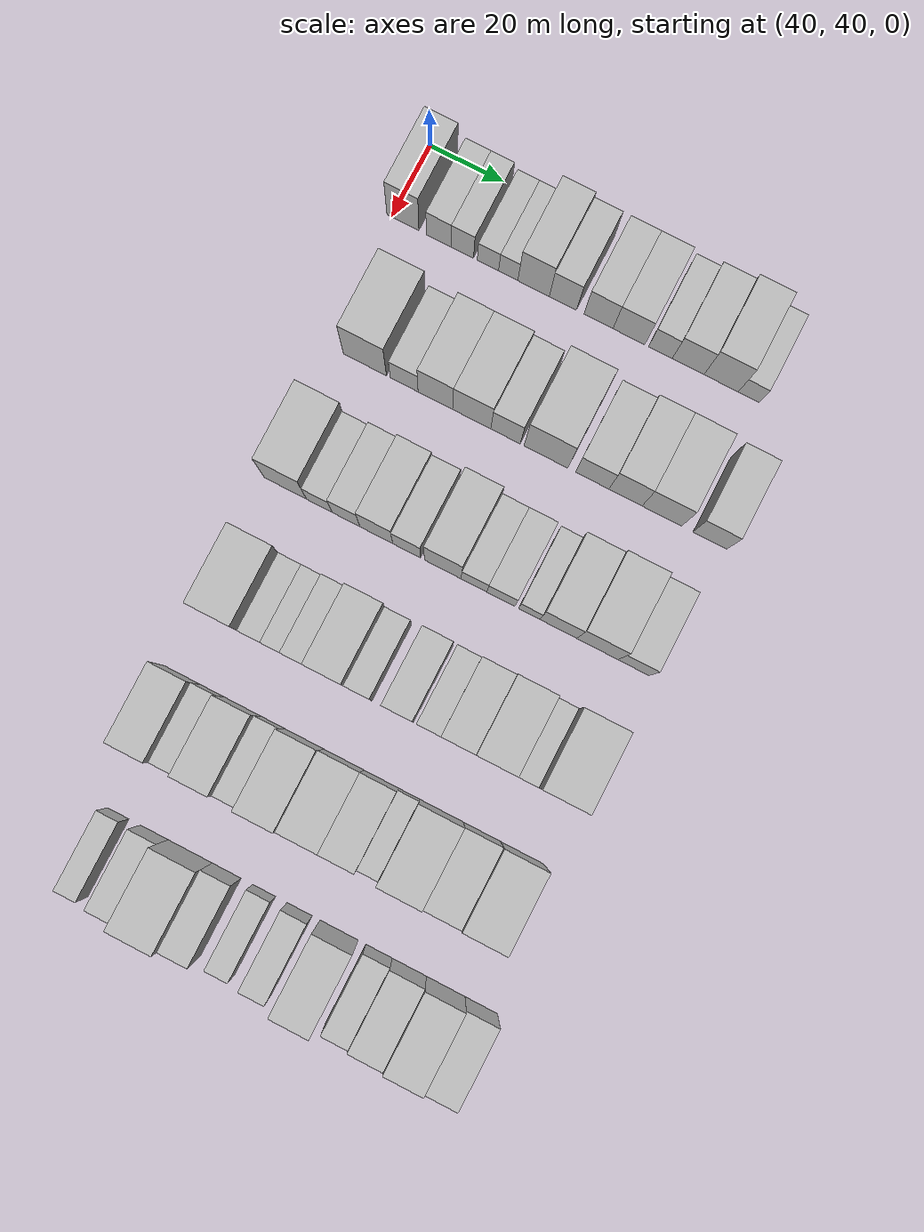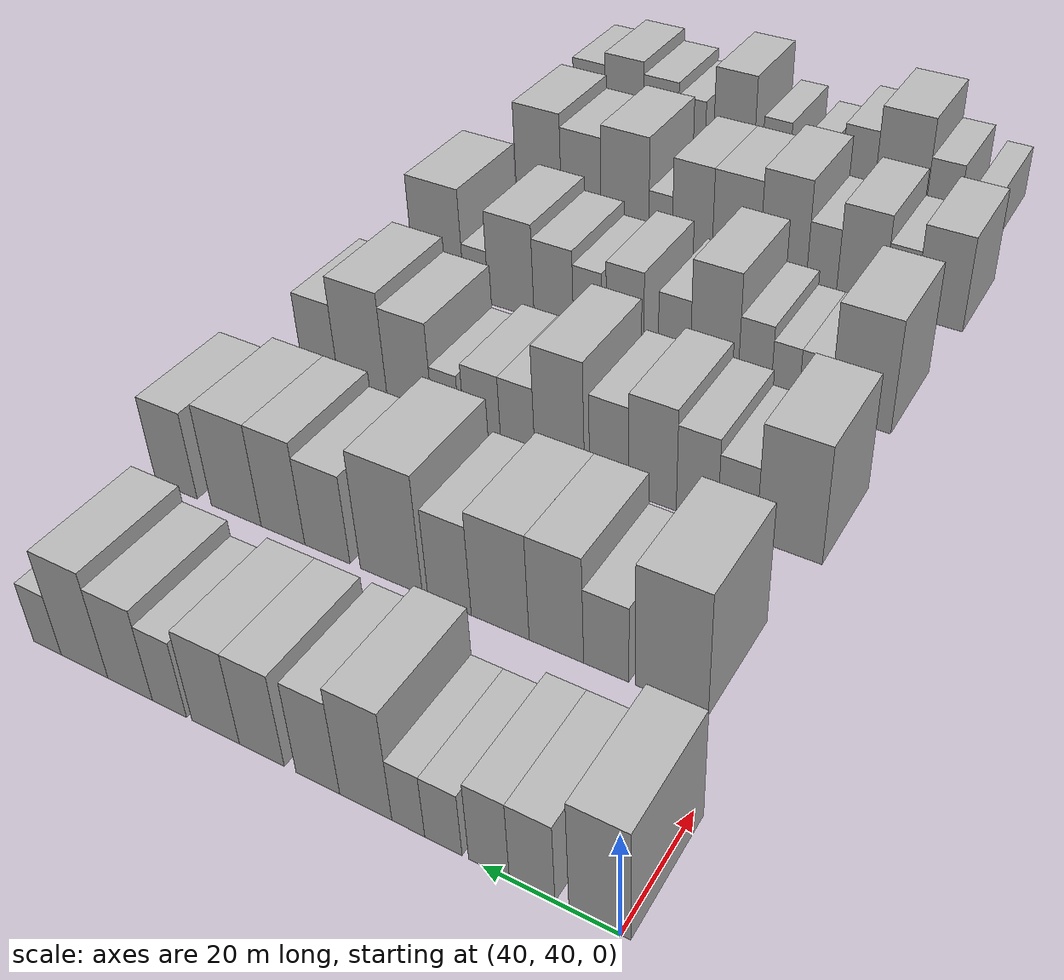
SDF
<sdf version="1.6">
 <world name="default">
  <model name="building_67">
   <static>1</static>
   <pose>50.0000 42.9604 0 0.000000 0.000000 0.000000</pose>
   <link name="link">
    <pose>0 0 10.50 0 0 0</pose>
    <collision name="collision"><geometry><box><size>20.0000 8.6655 21.0000</size></box></geometry></collision>
    <visual name="visual">
     <cast_shadows>0</cast_shadows>
     <geometry><box><size>20.0000 8.6655 21.0000</size></box></geometry>
     <material>
      <script>
       <uri>model://HANNAS_wall/materials/scripts</uri>
       <uri>model://HANNAS_wall/materials/textures</uri>
       <name>vrc/HANNAS_wall</name>
      </script>
     </material>
    </visual>
   </link>
  </model>
  <model name="building_68">
   <static>1</static>
   <pose>50.0000 52.6133 0 0.000000 0.000000 0.000000</pose>
   <link name="link">
    <pose>0 0 7.50 0 0 0</pose>
    <collision name="collision"><geometry><box><size>20.0000 6.6403 15.0000</size></box></geometry></collision>
    <visual name="visual">
     <cast_shadows>0</cast_shadows>
     <geometry><box><size>20.0000 6.6403 15.0000</size></box></geometry>
     <material>
      <script>
       <uri>model://HANNAS_wall/materials/scripts</uri>
       <uri>model://HANNAS_wall/materials/textures</uri>
       <name>vrc/HANNAS_wall</name>
      </script>
     </material>
    </visual>
   </link>
  </model>
  <model name="building_69">
   <static>1</static>
   <pose>50.0000 58.9847 0 0.000000 0.000000 0.000000</pose>
   <link name="link">
    <pose>0 0 7.50 0 0 0</pose>
    <collision name="collision"><geometry><box><size>20.0000 6.1026 15.0000</size></box></geometry></collision>
    <visual name="visual">
     <cast_shadows>0</cast_shadows>
     <geometry><box><size>20.0000 6.1026 15.0000</size></box></geometry>
     <material>
      <script>
       <uri>model://HANNAS_wall/materials/scripts</uri>
       <uri>model://HANNAS_wall/materials/textures</uri>
       <name>vrc/HANNAS_wall</name>
      </script>
     </material>
    </visual>
   </link>
  </model>
  <model name="building_70">
   <static>1</static>
   <pose>50.0000 65.9096 0 0.000000 0.000000 0.000000</pose>
   <link name="link">
    <pose>0 0 6.00 0 0 0</pose>
    <collision name="collision"><geometry><box><size>20.0000 5.7470 12.0000</size></box></geometry></collision>
    <visual name="visual">
     <cast_shadows>0</cast_shadows>
     <geometry><box><size>20.0000 5.7470 12.0000</size></box></geometry>
     <material>
      <script>
       <uri>model://HANNAS_wall/materials/scripts</uri>
       <uri>model://HANNAS_wall/materials/textures</uri>
       <name>vrc/HANNAS_wall</name>
      </script>
     </material>
    </visual>
   </link>
  </model>
  <model name="building_71">
   <static>1</static>
   <pose>50.0000 71.3713 0 0.000000 0.000000 0.000000</pose>
   <link name="link">
    <pose>0 0 6.00 0 0 0</pose>
    <collision name="collision"><geometry><box><size>20.0000 5.1764 12.0000</size></box></geometry></collision>
    <visual name="visual">
     <cast_shadows>0</cast_shadows>
     <geometry><box><size>20.0000 5.1764 12.0000</size></box></geometry>
     <material>
      <script>
       <uri>model://HANNAS_wall/materials/scripts</uri>
       <uri>model://HANNAS_wall/materials/textures</uri>
       <name>vrc/HANNAS_wall</name>
      </script>
     </material>
    </visual>
   </link>
  </model>
  <model name="building_72">
   <static>1</static>
   <pose>50.0000 78.1862 0 0.000000 0.000000 0.000000</pose>
   <link name="link">
    <pose>0 0 10.50 0 0 0</pose>
    <collision name="collision"><geometry><box><size>20.0000 8.4534 21.0000</size></box></geometry></collision>
    <visual name="visual">
     <cast_shadows>0</cast_shadows>
     <geometry><box><size>20.0000 8.4534 21.0000</size></box></geometry>
     <material>
      <script>
       <uri>model://HANNAS_wall/materials/scripts</uri>
       <uri>model://HANNAS_wall/materials/textures</uri>
       <name>vrc/HANNAS_wall</name>
      </script>
     </material>
    </visual>
   </link>
  </model>
  <model name="building_73">
   <static>1</static>
   <pose>50.0000 86.0639 0 0.000000 0.000000 0.000000</pose>
   <link name="link">
    <pose>0 0 9.00 0 0 0</pose>
    <collision name="collision"><geometry><box><size>20.0000 7.3019 18.0000</size></box></geometry></collision>
    <visual name="visual">
     <cast_shadows>0</cast_shadows>
     <geometry><box><size>20.0000 7.3019 18.0000</size></box></geometry>
     <material>
      <script>
       <uri>model://HANNAS_wall/materials/scripts</uri>
       <uri>model://HANNAS_wall/materials/textures</uri>
       <name>vrc/HANNAS_wall</name>
      </script>
     </material>
    </visual>
   </link>
  </model>
  <model name="building_74">
   <static>1</static>
   <pose>50.0000 95.6060 0 0.000000 0.000000 0.000000</pose>
   <link name="link">
    <pose>0 0 9.00 0 0 0</pose>
    <collision name="collision"><geometry><box><size>20.0000 7.7823 18.0000</size></box></geometry></collision>
    <visual name="visual">
     <cast_shadows>0</cast_shadows>
     <geometry><box><size>20.0000 7.7823 18.0000</size></box></geometry>
     <material>
      <script>
       <uri>model://HANNAS_wall/materials/scripts</uri>
       <uri>model://HANNAS_wall/materials/textures</uri>
       <name>vrc/HANNAS_wall</name>
      </script>
     </material>
    </visual>
   </link>
  </model>
  <model name="building_75">
   <static>1</static>
   <pose>50.0000 103.7394 0 0.000000 0.000000 0.000000</pose>
   <link name="link">
    <pose>0 0 9.00 0 0 0</pose>
    <collision name="collision"><geometry><box><size>20.0000 8.4844 18.0000</size></box></geometry></collision>
    <visual name="visual">
     <cast_shadows>0</cast_shadows>
     <geometry><box><size>20.0000 8.4844 18.0000</size></box></geometry>
     <material>
      <script>
       <uri>model://HANNAS_wall/materials/scripts</uri>
       <uri>model://HANNAS_wall/materials/textures</uri>
       <name>vrc/HANNAS_wall</name>
      </script>
     </material>
    </visual>
   </link>
  </model>
  <model name="building_76">
   <static>1</static>
   <pose>50.0000 112.1376 0 0.000000 0.000000 0.000000</pose>
   <link name="link">
    <pose>0 0 7.50 0 0 0</pose>
    <collision name="collision"><geometry><box><size>20.0000 6.3120 15.0000</size></box></geometry></collision>
    <visual name="visual">
     <cast_shadows>0</cast_shadows>
     <geometry><box><size>20.0000 6.3120 15.0000</size></box></geometry>
     <material>
      <script>
       <uri>model://HANNAS_wall/materials/scripts</uri>
       <uri>model://HANNAS_wall/materials/textures</uri>
       <name>vrc/HANNAS_wall</name>
      </script>
     </material>
    </visual>
   </link>
  </model>
  <model name="building_77">
   <static>1</static>
   <pose>50.0000 119.5166 0 0.000000 0.000000 0.000000</pose>
   <link name="link">
    <pose>0 0 9.00 0 0 0</pose>
    <collision name="collision"><geometry><box><size>20.0000 8.4460 18.0000</size></box></geometry></collision>
    <visual name="visual">
     <cast_shadows>0</cast_shadows>
     <geometry><box><size>20.0000 8.4460 18.0000</size></box></geometry>
     <material>
      <script>
       <uri>model://HANNAS_wall/materials/scripts</uri>
       <uri>model://HANNAS_wall/materials/textures</uri>
       <name>vrc/HANNAS_wall</name>
      </script>
     </material>
    </visual>
   </link>
  </model>
  <model name="building_78">
   <static>1</static>
   <pose>50.0000 128.3027 0 0.000000 0.000000 0.000000</pose>
   <link name="link">
    <pose>0 0 10.50 0 0 0</pose>
    <collision name="collision"><geometry><box><size>20.0000 9.1263 21.0000</size></box></geometry></collision>
    <visual name="visual">
     <cast_shadows>0</cast_shadows>
     <geometry><box><size>20.0000 9.1263 21.0000</size></box></geometry>
     <material>
      <script>
       <uri>model://HANNAS_wall/materials/scripts</uri>
       <uri>model://HANNAS_wall/materials/textures</uri>
       <name>vrc/HANNAS_wall</name>
      </script>
     </material>
    </visual>
   </link>
  </model>
  <model name="building_79">
   <static>1</static>
   <pose>50.0000 135.6448 0 0.000000 0.000000 0.000000</pose>
   <link name="link">
    <pose>0 0 6.00 0 0 0</pose>
    <collision name="collision"><geometry><box><size>20.0000 5.5580 12.0000</size></box></geometry></collision>
    <visual name="visual">
     <cast_shadows>0</cast_shadows>
     <geometry><box><size>20.0000 5.5580 12.0000</size></box></geometry>
     <material>
      <script>
       <uri>model://HANNAS_wall/materials/scripts</uri>
       <uri>model://HANNAS_wall/materials/textures</uri>
       <name>vrc/HANNAS_wall</name>
      </script>
     </material>
    </visual>
   </link>
  </model>
  <model name="building_201">
   <static>1</static>
   <pose>85.0000 51.0186 0 0.000000 0.000000 0.000000</pose>
   <link name="link">
    <pose>0 0 12.00 0 0 0</pose>
    <collision name="collision"><geometry><box><size>20.0000 11.6009 24.0000</size></box></geometry></collision>
    <visual name="visual">
     <cast_shadows>0</cast_shadows>
     <geometry><box><size>20.0000 11.6009 24.0000</size></box></geometry>
     <material>
      <script>
       <uri>model://HANNAS_wall/materials/scripts</uri>
       <uri>model://HANNAS_wall/materials/textures</uri>
       <name>vrc/HANNAS_wall</name>
      </script>
     </material>
    </visual>
   </link>
  </model>
  <model name="building_202">
   <static>1</static>
   <pose>85.0000 61.5424 0 0.000000 0.000000 0.000000</pose>
   <link name="link">
    <pose>0 0 7.50 0 0 0</pose>
    <collision name="collision"><geometry><box><size>20.0000 7.4467 15.0000</size></box></geometry></collision>
    <visual name="visual">
     <cast_shadows>0</cast_shadows>
     <geometry><box><size>20.0000 7.4467 15.0000</size></box></geometry>
     <material>
      <script>
       <uri>model://HANNAS_wall/materials/scripts</uri>
       <uri>model://HANNAS_wall/materials/textures</uri>
       <name>vrc/HANNAS_wall</name>
      </script>
     </material>
    </visual>
   </link>
  </model>
  <model name="building_203">
   <static>1</static>
   <pose>85.0000 69.8786 0 0.000000 0.000000 0.000000</pose>
   <link name="link">
    <pose>0 0 10.50 0 0 0</pose>
    <collision name="collision"><geometry><box><size>20.0000 9.2257 21.0000</size></box></geometry></collision>
    <visual name="visual">
     <cast_shadows>0</cast_shadows>
     <geometry><box><size>20.0000 9.2257 21.0000</size></box></geometry>
     <material>
      <script>
       <uri>model://HANNAS_wall/materials/scripts</uri>
       <uri>model://HANNAS_wall/materials/textures</uri>
       <name>vrc/HANNAS_wall</name>
      </script>
     </material>
    </visual>
   </link>
  </model>
  <model name="building_204">
   <static>1</static>
   <pose>85.0000 79.5762 0 0.000000 0.000000 0.000000</pose>
   <link name="link">
    <pose>0 0 10.50 0 0 0</pose>
    <collision name="collision"><geometry><box><size>20.0000 10.1694 21.0000</size></box></geometry></collision>
    <visual name="visual">
     <cast_shadows>0</cast_shadows>
     <geometry><box><size>20.0000 10.1694 21.0000</size></box></geometry>
     <material>
      <script>
       <uri>model://HANNAS_wall/materials/scripts</uri>
       <uri>model://HANNAS_wall/materials/textures</uri>
       <name>vrc/HANNAS_wall</name>
      </script>
     </material>
    </visual>
   </link>
  </model>
  <model name="building_205">
   <static>1</static>
   <pose>85.0000 88.5937 0 0.000000 0.000000 0.000000</pose>
   <link name="link">
    <pose>0 0 9.00 0 0 0</pose>
    <collision name="collision"><geometry><box><size>20.0000 7.8656 18.0000</size></box></geometry></collision>
    <visual name="visual">
     <cast_shadows>0</cast_shadows>
     <geometry><box><size>20.0000 7.8656 18.0000</size></box></geometry>
     <material>
      <script>
       <uri>model://HANNAS_wall/materials/scripts</uri>
       <uri>model://HANNAS_wall/materials/textures</uri>
       <name>vrc/HANNAS_wall</name>
      </script>
     </material>
    </visual>
   </link>
  </model>
  <model name="building_206">
   <static>1</static>
   <pose>85.0000 99.3612 0 0.000000 0.000000 0.000000</pose>
   <link name="link">
    <pose>0 0 12.00 0 0 0</pose>
    <collision name="collision"><geometry><box><size>20.0000 11.6693 24.0000</size></box></geometry></collision>
    <visual name="visual">
     <cast_shadows>0</cast_shadows>
     <geometry><box><size>20.0000 11.6693 24.0000</size></box></geometry>
     <material>
      <script>
       <uri>model://HANNAS_wall/materials/scripts</uri>
       <uri>model://HANNAS_wall/materials/textures</uri>
       <name>vrc/HANNAS_wall</name>
      </script>
     </material>
    </visual>
   </link>
  </model>
  <model name="building_207">
   <static>1</static>
   <pose>85.0000 111.6255 0 0.000000 0.000000 0.000000</pose>
   <link name="link">
    <pose>0 0 9.00 0 0 0</pose>
    <collision name="collision"><geometry><box><size>20.0000 8.8593 18.0000</size></box></geometry></collision>
    <visual name="visual">
     <cast_shadows>0</cast_shadows>
     <geometry><box><size>20.0000 8.8593 18.0000</size></box></geometry>
     <material>
      <script>
       <uri>model://HANNAS_wall/materials/scripts</uri>
       <uri>model://HANNAS_wall/materials/textures</uri>
       <name>vrc/HANNAS_wall</name>
      </script>
     </material>
    </visual>
   </link>
  </model>
  <model name="building_208">
   <static>1</static>
   <pose>85.0000 120.4664 0 0.000000 0.000000 0.000000</pose>
   <link name="link">
    <pose>0 0 10.50 0 0 0</pose>
    <collision name="collision"><geometry><box><size>20.0000 8.8223 21.0000</size></box></geometry></collision>
    <visual name="visual">
     <cast_shadows>0</cast_shadows>
     <geometry><box><size>20.0000 8.8223 21.0000</size></box></geometry>
     <material>
      <script>
       <uri>model://HANNAS_wall/materials/scripts</uri>
       <uri>model://HANNAS_wall/materials/textures</uri>
       <name>vrc/HANNAS_wall</name>
      </script>
     </material>
    </visual>
   </link>
  </model>
  <model name="building_209">
   <static>1</static>
   <pose>85.0000 130.0761 0 0.000000 0.000000 0.000000</pose>
   <link name="link">
    <pose>0 0 10.50 0 0 0</pose>
    <collision name="collision"><geometry><box><size>20.0000 10.3971 21.0000</size></box></geometry></collision>
    <visual name="visual">
     <cast_shadows>0</cast_shadows>
     <geometry><box><size>20.0000 10.3971 21.0000</size></box></geometry>
     <material>
      <script>
       <uri>model://HANNAS_wall/materials/scripts</uri>
       <uri>model://HANNAS_wall/materials/textures</uri>
       <name>vrc/HANNAS_wall</name>
      </script>
     </material>
    </visual>
   </link>
  </model>
  <model name="building_210">
   <static>1</static>
   <pose>85.0000 142.7205 0 0.000000 0.000000 0.000000</pose>
   <link name="link">
    <pose>0 0 9.00 0 0 0</pose>
    <collision name="collision"><geometry><box><size>20.0000 8.8918 18.0000</size></box></geometry></collision>
    <visual name="visual">
     <cast_shadows>0</cast_shadows>
     <geometry><box><size>20.0000 8.8918 18.0000</size></box></geometry>
     <material>
      <script>
       <uri>model://HANNAS_wall/materials/scripts</uri>
       <uri>model://HANNAS_wall/materials/textures</uri>
       <name>vrc/HANNAS_wall</name>
      </script>
     </material>
    </visual>
   </link>
  </model>
  <model name="building_322">
   <static>1</static>
   <pose>120.0000 48.1738 0 0.000000 0.000000 0.000000</pose>
   <link name="link">
    <pose>0 0 12.00 0 0 0</pose>
    <collision name="collision"><geometry><box><size>20.0000 11.2857 24.0000</size></box></geometry></collision>
    <visual name="visual">
     <cast_shadows>0</cast_shadows>
     <geometry><box><size>20.0000 11.2857 24.0000</size></box></geometry>
     <material>
      <script>
       <uri>model://HANNAS_wall/materials/scripts</uri>
       <uri>model://HANNAS_wall/materials/textures</uri>
       <name>vrc/HANNAS_wall</name>
      </script>
     </material>
    </visual>
   </link>
  </model>
  <model name="building_323">
   <static>1</static>
   <pose>120.0000 57.2144 0 0.000000 0.000000 0.000000</pose>
   <link name="link">
    <pose>0 0 7.50 0 0 0</pose>
    <collision name="collision"><geometry><box><size>20.0000 6.7955 15.0000</size></box></geometry></collision>
    <visual name="visual">
     <cast_shadows>0</cast_shadows>
     <geometry><box><size>20.0000 6.7955 15.0000</size></box></geometry>
     <material>
      <script>
       <uri>model://HANNAS_wall/materials/scripts</uri>
       <uri>model://HANNAS_wall/materials/textures</uri>
       <name>vrc/HANNAS_wall</name>
      </script>
     </material>
    </visual>
   </link>
  </model>
  <model name="building_324">
   <static>1</static>
   <pose>120.0000 64.3165 0 0.000000 0.000000 0.000000</pose>
   <link name="link">
    <pose>0 0 9.00 0 0 0</pose>
    <collision name="collision"><geometry><box><size>20.0000 7.4087 18.0000</size></box></geometry></collision>
    <visual name="visual">
     <cast_shadows>0</cast_shadows>
     <geometry><box><size>20.0000 7.4087 18.0000</size></box></geometry>
     <material>
      <script>
       <uri>model://HANNAS_wall/materials/scripts</uri>
       <uri>model://HANNAS_wall/materials/textures</uri>
       <name>vrc/HANNAS_wall</name>
      </script>
     </material>
    </visual>
   </link>
  </model>
  <model name="building_325">
   <static>1</static>
   <pose>120.0000 72.4048 0 0.000000 0.000000 0.000000</pose>
   <link name="link">
    <pose>0 0 10.50 0 0 0</pose>
    <collision name="collision"><geometry><box><size>20.0000 8.7681 21.0000</size></box></geometry></collision>
    <visual name="visual">
     <cast_shadows>0</cast_shadows>
     <geometry><box><size>20.0000 8.7681 21.0000</size></box></geometry>
     <material>
      <script>
       <uri>model://HANNAS_wall/materials/scripts</uri>
       <uri>model://HANNAS_wall/materials/textures</uri>
       <name>vrc/HANNAS_wall</name>
      </script>
     </material>
    </visual>
   </link>
  </model>
  <model name="building_326">
   <static>1</static>
   <pose>120.0000 80.4656 0 0.000000 0.000000 0.000000</pose>
   <link name="link">
    <pose>0 0 9.00 0 0 0</pose>
    <collision name="collision"><geometry><box><size>20.0000 7.3535 18.0000</size></box></geometry></collision>
    <visual name="visual">
     <cast_shadows>0</cast_shadows>
     <geometry><box><size>20.0000 7.3535 18.0000</size></box></geometry>
     <material>
      <script>
       <uri>model://HANNAS_wall/materials/scripts</uri>
       <uri>model://HANNAS_wall/materials/textures</uri>
       <name>vrc/HANNAS_wall</name>
      </script>
     </material>
    </visual>
   </link>
  </model>
  <model name="building_327">
   <static>1</static>
   <pose>120.0000 89.9763 0 0.000000 0.000000 0.000000</pose>
   <link name="link">
    <pose>0 0 12.00 0 0 0</pose>
    <collision name="collision"><geometry><box><size>20.0000 9.6679 24.0000</size></box></geometry></collision>
    <visual name="visual">
     <cast_shadows>0</cast_shadows>
     <geometry><box><size>20.0000 9.6679 24.0000</size></box></geometry>
     <material>
      <script>
       <uri>model://HANNAS_wall/materials/scripts</uri>
       <uri>model://HANNAS_wall/materials/textures</uri>
       <name>vrc/HANNAS_wall</name>
      </script>
     </material>
    </visual>
   </link>
  </model>
  <model name="building_328">
   <static>1</static>
   <pose>120.0000 98.2175 0 0.000000 0.000000 0.000000</pose>
   <link name="link">
    <pose>0 0 7.50 0 0 0</pose>
    <collision name="collision"><geometry><box><size>20.0000 6.8144 15.0000</size></box></geometry></collision>
    <visual name="visual">
     <cast_shadows>0</cast_shadows>
     <geometry><box><size>20.0000 6.8144 15.0000</size></box></geometry>
     <material>
      <script>
       <uri>model://HANNAS_wall/materials/scripts</uri>
       <uri>model://HANNAS_wall/materials/textures</uri>
       <name>vrc/HANNAS_wall</name>
      </script>
     </material>
    </visual>
   </link>
  </model>
  <model name="building_329">
   <static>1</static>
   <pose>120.0000 105.3238 0 0.000000 0.000000 0.000000</pose>
   <link name="link">
    <pose>0 0 7.50 0 0 0</pose>
    <collision name="collision"><geometry><box><size>20.0000 7.3983 15.0000</size></box></geometry></collision>
    <visual name="visual">
     <cast_shadows>0</cast_shadows>
     <geometry><box><size>20.0000 7.3983 15.0000</size></box></geometry>
     <material>
      <script>
       <uri>model://HANNAS_wall/materials/scripts</uri>
       <uri>model://HANNAS_wall/materials/textures</uri>
       <name>vrc/HANNAS_wall</name>
      </script>
     </material>
    </visual>
   </link>
  </model>
  <model name="building_330">
   <static>1</static>
   <pose>120.0000 112.8251 0 0.000000 0.000000 0.000000</pose>
   <link name="link">
    <pose>0 0 6.00 0 0 0</pose>
    <collision name="collision"><geometry><box><size>20.0000 5.6042 12.0000</size></box></geometry></collision>
    <visual name="visual">
     <cast_shadows>0</cast_shadows>
     <geometry><box><size>20.0000 5.6042 12.0000</size></box></geometry>
     <material>
      <script>
       <uri>model://HANNAS_wall/materials/scripts</uri>
       <uri>model://HANNAS_wall/materials/textures</uri>
       <name>vrc/HANNAS_wall</name>
      </script>
     </material>
    </visual>
   </link>
  </model>
  <model name="building_331">
   <static>1</static>
   <pose>120.0000 120.4622 0 0.000000 0.000000 0.000000</pose>
   <link name="link">
    <pose>0 0 10.50 0 0 0</pose>
    <collision name="collision"><geometry><box><size>20.0000 9.6699 21.0000</size></box></geometry></collision>
    <visual name="visual">
     <cast_shadows>0</cast_shadows>
     <geometry><box><size>20.0000 9.6699 21.0000</size></box></geometry>
     <material>
      <script>
       <uri>model://HANNAS_wall/materials/scripts</uri>
       <uri>model://HANNAS_wall/materials/textures</uri>
       <name>vrc/HANNAS_wall</name>
      </script>
     </material>
    </visual>
   </link>
  </model>
  <model name="building_332">
   <static>1</static>
   <pose>120.0000 130.6867 0 0.000000 0.000000 0.000000</pose>
   <link name="link">
    <pose>0 0 12.00 0 0 0</pose>
    <collision name="collision"><geometry><box><size>20.0000 10.7792 24.0000</size></box></geometry></collision>
    <visual name="visual">
     <cast_shadows>0</cast_shadows>
     <geometry><box><size>20.0000 10.7792 24.0000</size></box></geometry>
     <material>
      <script>
       <uri>model://HANNAS_wall/materials/scripts</uri>
       <uri>model://HANNAS_wall/materials/textures</uri>
       <name>vrc/HANNAS_wall</name>
      </script>
     </material>
    </visual>
   </link>
  </model>
  <model name="building_333">
   <static>1</static>
   <pose>120.0000 140.1215 0 0.000000 0.000000 0.000000</pose>
   <link name="link">
    <pose>0 0 9.00 0 0 0</pose>
    <collision name="collision"><geometry><box><size>20.0000 8.0905 18.0000</size></box></geometry></collision>
    <visual name="visual">
     <cast_shadows>0</cast_shadows>
     <geometry><box><size>20.0000 8.0905 18.0000</size></box></geometry>
     <material>
      <script>
       <uri>model://HANNAS_wall/materials/scripts</uri>
       <uri>model://HANNAS_wall/materials/textures</uri>
       <name>vrc/HANNAS_wall</name>
      </script>
     </material>
    </visual>
   </link>
  </model>
  <model name="building_452">
   <static>1</static>
   <pose>155.0000 49.8815 0 0.000000 0.000000 0.000000</pose>
   <link name="link">
    <pose>0 0 12.00 0 0 0</pose>
    <collision name="collision"><geometry><box><size>20.0000 11.4076 24.0000</size></box></geometry></collision>
    <visual name="visual">
     <cast_shadows>0</cast_shadows>
     <geometry><box><size>20.0000 11.4076 24.0000</size></box></geometry>
     <material>
      <script>
       <uri>model://HANNAS_wall/materials/scripts</uri>
       <uri>model://HANNAS_wall/materials/textures</uri>
       <name>vrc/HANNAS_wall</name>
      </script>
     </material>
    </visual>
   </link>
  </model>
  <model name="building_453">
   <static>1</static>
   <pose>155.0000 58.5245 0 0.000000 0.000000 0.000000</pose>
   <link name="link">
    <pose>0 0 6.00 0 0 0</pose>
    <collision name="collision"><geometry><box><size>20.0000 5.8783 12.0000</size></box></geometry></collision>
    <visual name="visual">
     <cast_shadows>0</cast_shadows>
     <geometry><box><size>20.0000 5.8783 12.0000</size></box></geometry>
     <material>
      <script>
       <uri>model://HANNAS_wall/materials/scripts</uri>
       <uri>model://HANNAS_wall/materials/textures</uri>
       <name>vrc/HANNAS_wall</name>
      </script>
     </material>
    </visual>
   </link>
  </model>
  <model name="building_454">
   <static>1</static>
   <pose>155.0000 64.1534 0 0.000000 0.000000 0.000000</pose>
   <link name="link">
    <pose>0 0 6.00 0 0 0</pose>
    <collision name="collision"><geometry><box><size>20.0000 5.3796 12.0000</size></box></geometry></collision>
    <visual name="visual">
     <cast_shadows>0</cast_shadows>
     <geometry><box><size>20.0000 5.3796 12.0000</size></box></geometry>
     <material>
      <script>
       <uri>model://HANNAS_wall/materials/scripts</uri>
       <uri>model://HANNAS_wall/materials/textures</uri>
       <name>vrc/HANNAS_wall</name>
      </script>
     </material>
    </visual>
   </link>
  </model>
  <model name="building_455">
   <static>1</static>
   <pose>155.0000 70.0931 0 0.000000 0.000000 0.000000</pose>
   <link name="link">
    <pose>0 0 7.50 0 0 0</pose>
    <collision name="collision"><geometry><box><size>20.0000 6.4999 15.0000</size></box></geometry></collision>
    <visual name="visual">
     <cast_shadows>0</cast_shadows>
     <geometry><box><size>20.0000 6.4999 15.0000</size></box></geometry>
     <material>
      <script>
       <uri>model://HANNAS_wall/materials/scripts</uri>
       <uri>model://HANNAS_wall/materials/textures</uri>
       <name>vrc/HANNAS_wall</name>
      </script>
     </material>
    </visual>
   </link>
  </model>
  <model name="building_456">
   <static>1</static>
   <pose>155.0000 78.1582 0 0.000000 0.000000 0.000000</pose>
   <link name="link">
    <pose>0 0 12.00 0 0 0</pose>
    <collision name="collision"><geometry><box><size>20.0000 9.6304 24.0000</size></box></geometry></collision>
    <visual name="visual">
     <cast_shadows>0</cast_shadows>
     <geometry><box><size>20.0000 9.6304 24.0000</size></box></geometry>
     <material>
      <script>
       <uri>model://HANNAS_wall/materials/scripts</uri>
       <uri>model://HANNAS_wall/materials/textures</uri>
       <name>vrc/HANNAS_wall</name>
      </script>
     </material>
    </visual>
   </link>
  </model>
  <model name="building_457">
   <static>1</static>
   <pose>155.0000 86.2595 0 0.000000 0.000000 0.000000</pose>
   <link name="link">
    <pose>0 0 7.50 0 0 0</pose>
    <collision name="collision"><geometry><box><size>20.0000 6.5722 15.0000</size></box></geometry></collision>
    <visual name="visual">
     <cast_shadows>0</cast_shadows>
     <geometry><box><size>20.0000 6.5722 15.0000</size></box></geometry>
     <material>
      <script>
       <uri>model://HANNAS_wall/materials/scripts</uri>
       <uri>model://HANNAS_wall/materials/textures</uri>
       <name>vrc/HANNAS_wall</name>
      </script>
     </material>
    </visual>
   </link>
  </model>
  <model name="building_458">
   <static>1</static>
   <pose>155.0000 96.4882 0 0.000000 0.000000 0.000000</pose>
   <link name="link">
    <pose>0 0 9.00 0 0 0</pose>
    <collision name="collision"><geometry><box><size>20.0000 7.8852 18.0000</size></box></geometry></collision>
    <visual name="visual">
     <cast_shadows>0</cast_shadows>
     <geometry><box><size>20.0000 7.8852 18.0000</size></box></geometry>
     <material>
      <script>
       <uri>model://HANNAS_wall/materials/scripts</uri>
       <uri>model://HANNAS_wall/materials/textures</uri>
       <name>vrc/HANNAS_wall</name>
      </script>
     </material>
    </visual>
   </link>
  </model>
  <model name="building_459">
   <static>1</static>
   <pose>155.0000 104.5131 0 0.000000 0.000000 0.000000</pose>
   <link name="link">
    <pose>0 0 7.50 0 0 0</pose>
    <collision name="collision"><geometry><box><size>20.0000 6.1645 15.0000</size></box></geometry></collision>
    <visual name="visual">
     <cast_shadows>0</cast_shadows>
     <geometry><box><size>20.0000 6.1645 15.0000</size></box></geometry>
     <material>
      <script>
       <uri>model://HANNAS_wall/materials/scripts</uri>
       <uri>model://HANNAS_wall/materials/textures</uri>
       <name>vrc/HANNAS_wall</name>
      </script>
     </material>
    </visual>
   </link>
  </model>
  <model name="building_460">
   <static>1</static>
   <pose>155.0000 111.9633 0 0.000000 0.000000 0.000000</pose>
   <link name="link">
    <pose>0 0 9.00 0 0 0</pose>
    <collision name="collision"><geometry><box><size>20.0000 8.7359 18.0000</size></box></geometry></collision>
    <visual name="visual">
     <cast_shadows>0</cast_shadows>
     <geometry><box><size>20.0000 8.7359 18.0000</size></box></geometry>
     <material>
      <script>
       <uri>model://HANNAS_wall/materials/scripts</uri>
       <uri>model://HANNAS_wall/materials/textures</uri>
       <name>vrc/HANNAS_wall</name>
      </script>
     </material>
    </visual>
   </link>
  </model>
  <model name="building_461">
   <static>1</static>
   <pose>155.0000 121.5119 0 0.000000 0.000000 0.000000</pose>
   <link name="link">
    <pose>0 0 10.50 0 0 0</pose>
    <collision name="collision"><geometry><box><size>20.0000 10.3613 21.0000</size></box></geometry></collision>
    <visual name="visual">
     <cast_shadows>0</cast_shadows>
     <geometry><box><size>20.0000 10.3613 21.0000</size></box></geometry>
     <material>
      <script>
       <uri>model://HANNAS_wall/materials/scripts</uri>
       <uri>model://HANNAS_wall/materials/textures</uri>
       <name>vrc/HANNAS_wall</name>
      </script>
     </material>
    </visual>
   </link>
  </model>
  <model name="building_462">
   <static>1</static>
   <pose>155.0000 129.5010 0 0.000000 0.000000 0.000000</pose>
   <link name="link">
    <pose>0 0 6.00 0 0 0</pose>
    <collision name="collision"><geometry><box><size>20.0000 5.6170 12.0000</size></box></geometry></collision>
    <visual name="visual">
     <cast_shadows>0</cast_shadows>
     <geometry><box><size>20.0000 5.6170 12.0000</size></box></geometry>
     <material>
      <script>
       <uri>model://HANNAS_wall/materials/scripts</uri>
       <uri>model://HANNAS_wall/materials/textures</uri>
       <name>vrc/HANNAS_wall</name>
      </script>
     </material>
    </visual>
   </link>
  </model>
  <model name="building_463">
   <static>1</static>
   <pose>155.0000 138.2376 0 0.000000 0.000000 0.000000</pose>
   <link name="link">
    <pose>0 0 12.00 0 0 0</pose>
    <collision name="collision"><geometry><box><size>20.0000 11.8561 24.0000</size></box></geometry></collision>
    <visual name="visual">
     <cast_shadows>0</cast_shadows>
     <geometry><box><size>20.0000 11.8561 24.0000</size></box></geometry>
     <material>
      <script>
       <uri>model://HANNAS_wall/materials/scripts</uri>
       <uri>model://HANNAS_wall/materials/textures</uri>
       <name>vrc/HANNAS_wall</name>
      </script>
     </material>
    </visual>
   </link>
  </model>
  <model name="building_587">
   <static>1</static>
   <pose>190.0000 47.5644 0 0.000000 0.000000 0.000000</pose>
   <link name="link">
    <pose>0 0 10.50 0 0 0</pose>
    <collision name="collision"><geometry><box><size>20.0000 9.7026 21.0000</size></box></geometry></collision>
    <visual name="visual">
     <cast_shadows>0</cast_shadows>
     <geometry><box><size>20.0000 9.7026 21.0000</size></box></geometry>
     <material>
      <script>
       <uri>model://HANNAS_wall/materials/scripts</uri>
       <uri>model://HANNAS_wall/materials/textures</uri>
       <name>vrc/HANNAS_wall</name>
      </script>
     </material>
    </visual>
   </link>
  </model>
  <model name="building_588">
   <static>1</static>
   <pose>190.0000 55.5635 0 0.000000 0.000000 0.000000</pose>
   <link name="link">
    <pose>0 0 7.50 0 0 0</pose>
    <collision name="collision"><geometry><box><size>20.0000 6.2957 15.0000</size></box></geometry></collision>
    <visual name="visual">
     <cast_shadows>0</cast_shadows>
     <geometry><box><size>20.0000 6.2957 15.0000</size></box></geometry>
     <material>
      <script>
       <uri>model://HANNAS_wall/materials/scripts</uri>
       <uri>model://HANNAS_wall/materials/textures</uri>
       <name>vrc/HANNAS_wall</name>
      </script>
     </material>
    </visual>
   </link>
  </model>
  <model name="building_589">
   <static>1</static>
   <pose>190.0000 63.5522 0 0.000000 0.000000 0.000000</pose>
   <link name="link">
    <pose>0 0 10.50 0 0 0</pose>
    <collision name="collision"><geometry><box><size>20.0000 9.6816 21.0000</size></box></geometry></collision>
    <visual name="visual">
     <cast_shadows>0</cast_shadows>
     <geometry><box><size>20.0000 9.6816 21.0000</size></box></geometry>
     <material>
      <script>
       <uri>model://HANNAS_wall/materials/scripts</uri>
       <uri>model://HANNAS_wall/materials/textures</uri>
       <name>vrc/HANNAS_wall</name>
      </script>
     </material>
    </visual>
   </link>
  </model>
  <model name="building_590">
   <static>1</static>
   <pose>190.0000 71.6071 0 0.000000 0.000000 0.000000</pose>
   <link name="link">
    <pose>0 0 7.50 0 0 0</pose>
    <collision name="collision"><geometry><box><size>20.0000 6.4282 15.0000</size></box></geometry></collision>
    <visual name="visual">
     <cast_shadows>0</cast_shadows>
     <geometry><box><size>20.0000 6.4282 15.0000</size></box></geometry>
     <material>
      <script>
       <uri>model://HANNAS_wall/materials/scripts</uri>
       <uri>model://HANNAS_wall/materials/textures</uri>
       <name>vrc/HANNAS_wall</name>
      </script>
     </material>
    </visual>
   </link>
  </model>
  <model name="building_591">
   <static>1</static>
   <pose>190.0000 79.8916 0 0.000000 0.000000 0.000000</pose>
   <link name="link">
    <pose>0 0 12.00 0 0 0</pose>
    <collision name="collision"><geometry><box><size>20.0000 10.1408 24.0000</size></box></geometry></collision>
    <visual name="visual">
     <cast_shadows>0</cast_shadows>
     <geometry><box><size>20.0000 10.1408 24.0000</size></box></geometry>
     <material>
      <script>
       <uri>model://HANNAS_wall/materials/scripts</uri>
       <uri>model://HANNAS_wall/materials/textures</uri>
       <name>vrc/HANNAS_wall</name>
      </script>
     </material>
    </visual>
   </link>
  </model>
  <model name="building_592">
   <static>1</static>
   <pose>190.0000 90.1981 0 0.000000 0.000000 0.000000</pose>
   <link name="link">
    <pose>0 0 10.50 0 0 0</pose>
    <collision name="collision"><geometry><box><size>20.0000 10.4723 21.0000</size></box></geometry></collision>
    <visual name="visual">
     <cast_shadows>0</cast_shadows>
     <geometry><box><size>20.0000 10.4723 21.0000</size></box></geometry>
     <material>
      <script>
       <uri>model://HANNAS_wall/materials/scripts</uri>
       <uri>model://HANNAS_wall/materials/textures</uri>
       <name>vrc/HANNAS_wall</name>
      </script>
     </material>
    </visual>
   </link>
  </model>
  <model name="building_593">
   <static>1</static>
   <pose>190.0000 99.9755 0 0.000000 0.000000 0.000000</pose>
   <link name="link">
    <pose>0 0 10.50 0 0 0</pose>
    <collision name="collision"><geometry><box><size>20.0000 9.0825 21.0000</size></box></geometry></collision>
    <visual name="visual">
     <cast_shadows>0</cast_shadows>
     <geometry><box><size>20.0000 9.0825 21.0000</size></box></geometry>
     <material>
      <script>
       <uri>model://HANNAS_wall/materials/scripts</uri>
       <uri>model://HANNAS_wall/materials/textures</uri>
       <name>vrc/HANNAS_wall</name>
      </script>
     </material>
    </visual>
   </link>
  </model>
  <model name="building_594">
   <static>1</static>
   <pose>190.0000 107.2200 0 0.000000 0.000000 0.000000</pose>
   <link name="link">
    <pose>0 0 6.00 0 0 0</pose>
    <collision name="collision"><geometry><box><size>20.0000 5.4065 12.0000</size></box></geometry></collision>
    <visual name="visual">
     <cast_shadows>0</cast_shadows>
     <geometry><box><size>20.0000 5.4065 12.0000</size></box></geometry>
     <material>
      <script>
       <uri>model://HANNAS_wall/materials/scripts</uri>
       <uri>model://HANNAS_wall/materials/textures</uri>
       <name>vrc/HANNAS_wall</name>
      </script>
     </material>
    </visual>
   </link>
  </model>
  <model name="building_595">
   <static>1</static>
   <pose>190.0000 115.5633 0 0.000000 0.000000 0.000000</pose>
   <link name="link">
    <pose>0 0 12.00 0 0 0</pose>
    <collision name="collision"><geometry><box><size>20.0000 11.2803 24.0000</size></box></geometry></collision>
    <visual name="visual">
     <cast_shadows>0</cast_shadows>
     <geometry><box><size>20.0000 11.2803 24.0000</size></box></geometry>
     <material>
      <script>
       <uri>model://HANNAS_wall/materials/scripts</uri>
       <uri>model://HANNAS_wall/materials/textures</uri>
       <name>vrc/HANNAS_wall</name>
      </script>
     </material>
    </visual>
   </link>
  </model>
  <model name="building_596">
   <static>1</static>
   <pose>190.0000 126.0184 0 0.000000 0.000000 0.000000</pose>
   <link name="link">
    <pose>0 0 10.50 0 0 0</pose>
    <collision name="collision"><geometry><box><size>20.0000 9.6297 21.0000</size></box></geometry></collision>
    <visual name="visual">
     <cast_shadows>0</cast_shadows>
     <geometry><box><size>20.0000 9.6297 21.0000</size></box></geometry>
     <material>
      <script>
       <uri>model://HANNAS_wall/materials/scripts</uri>
       <uri>model://HANNAS_wall/materials/textures</uri>
       <name>vrc/HANNAS_wall</name>
      </script>
     </material>
    </visual>
   </link>
  </model>
  <model name="building_597">
   <static>1</static>
   <pose>190.0000 136.4218 0 0.000000 0.000000 0.000000</pose>
   <link name="link">
    <pose>0 0 12.00 0 0 0</pose>
    <collision name="collision"><geometry><box><size>20.0000 11.1771 24.0000</size></box></geometry></collision>
    <visual name="visual">
     <cast_shadows>0</cast_shadows>
     <geometry><box><size>20.0000 11.1771 24.0000</size></box></geometry>
     <material>
      <script>
       <uri>model://HANNAS_wall/materials/scripts</uri>
       <uri>model://HANNAS_wall/materials/textures</uri>
       <name>vrc/HANNAS_wall</name>
      </script>
     </material>
    </visual>
   </link>
  </model>
  <model name="building_708">
   <static>1</static>
   <pose>225.0000 49.4729 0 0.000000 0.000000 0.000000</pose>
   <link name="link">
    <pose>0 0 6.00 0 0 0</pose>
    <collision name="collision"><geometry><box><size>20.0000 5.6390 12.0000</size></box></geometry></collision>
    <visual name="visual">
     <cast_shadows>0</cast_shadows>
     <geometry><box><size>20.0000 5.6390 12.0000</size></box></geometry>
     <material>
      <script>
       <uri>model://HANNAS_wall/materials/scripts</uri>
       <uri>model://HANNAS_wall/materials/textures</uri>
       <name>vrc/HANNAS_wall</name>
      </script>
     </material>
    </visual>
   </link>
  </model>
  <model name="building_709">
   <static>1</static>
   <pose>225.0000 58.9259 0 0.000000 0.000000 0.000000</pose>
   <link name="link">
    <pose>0 0 7.50 0 0 0</pose>
    <collision name="collision"><geometry><box><size>20.0000 7.2672 15.0000</size></box></geometry></collision>
    <visual name="visual">
     <cast_shadows>0</cast_shadows>
     <geometry><box><size>20.0000 7.2672 15.0000</size></box></geometry>
     <material>
      <script>
       <uri>model://HANNAS_wall/materials/scripts</uri>
       <uri>model://HANNAS_wall/materials/textures</uri>
       <name>vrc/HANNAS_wall</name>
      </script>
     </material>
    </visual>
   </link>
  </model>
  <model name="building_710">
   <static>1</static>
   <pose>225.0000 68.3466 0 0.000000 0.000000 0.000000</pose>
   <link name="link">
    <pose>0 0 12.00 0 0 0</pose>
    <collision name="collision"><geometry><box><size>20.0000 11.5741 24.0000</size></box></geometry></collision>
    <visual name="visual">
     <cast_shadows>0</cast_shadows>
     <geometry><box><size>20.0000 11.5741 24.0000</size></box></geometry>
     <material>
      <script>
       <uri>model://HANNAS_wall/materials/scripts</uri>
       <uri>model://HANNAS_wall/materials/textures</uri>
       <name>vrc/HANNAS_wall</name>
      </script>
     </material>
    </visual>
   </link>
  </model>
  <model name="building_711">
   <static>1</static>
   <pose>225.0000 77.9167 0 0.000000 0.000000 0.000000</pose>
   <link name="link">
    <pose>0 0 9.00 0 0 0</pose>
    <collision name="collision"><geometry><box><size>20.0000 7.5661 18.0000</size></box></geometry></collision>
    <visual name="visual">
     <cast_shadows>0</cast_shadows>
     <geometry><box><size>20.0000 7.5661 18.0000</size></box></geometry>
     <material>
      <script>
       <uri>model://HANNAS_wall/materials/scripts</uri>
       <uri>model://HANNAS_wall/materials/textures</uri>
       <name>vrc/HANNAS_wall</name>
      </script>
     </material>
    </visual>
   </link>
  </model>
  <model name="building_712">
   <static>1</static>
   <pose>225.0000 87.6881 0 0.000000 0.000000 0.000000</pose>
   <link name="link">
    <pose>0 0 6.00 0 0 0</pose>
    <collision name="collision"><geometry><box><size>20.0000 5.9766 12.0000</size></box></geometry></collision>
    <visual name="visual">
     <cast_shadows>0</cast_shadows>
     <geometry><box><size>20.0000 5.9766 12.0000</size></box></geometry>
     <material>
      <script>
       <uri>model://HANNAS_wall/materials/scripts</uri>
       <uri>model://HANNAS_wall/materials/textures</uri>
       <name>vrc/HANNAS_wall</name>
      </script>
     </material>
    </visual>
   </link>
  </model>
  <model name="building_713">
   <static>1</static>
   <pose>225.0000 96.9662 0 0.000000 0.000000 0.000000</pose>
   <link name="link">
    <pose>0 0 7.50 0 0 0</pose>
    <collision name="collision"><geometry><box><size>20.0000 6.5795 15.0000</size></box></geometry></collision>
    <visual name="visual">
     <cast_shadows>0</cast_shadows>
     <geometry><box><size>20.0000 6.5795 15.0000</size></box></geometry>
     <material>
      <script>
       <uri>model://HANNAS_wall/materials/scripts</uri>
       <uri>model://HANNAS_wall/materials/textures</uri>
       <name>vrc/HANNAS_wall</name>
      </script>
     </material>
    </visual>
   </link>
  </model>
  <model name="building_714">
   <static>1</static>
   <pose>225.0000 107.2061 0 0.000000 0.000000 0.000000</pose>
   <link name="link">
    <pose>0 0 12.00 0 0 0</pose>
    <collision name="collision"><geometry><box><size>20.0000 9.9003 24.0000</size></box></geometry></collision>
    <visual name="visual">
     <cast_shadows>0</cast_shadows>
     <geometry><box><size>20.0000 9.9003 24.0000</size></box></geometry>
     <material>
      <script>
       <uri>model://HANNAS_wall/materials/scripts</uri>
       <uri>model://HANNAS_wall/materials/textures</uri>
       <name>vrc/HANNAS_wall</name>
      </script>
     </material>
    </visual>
   </link>
  </model>
  <model name="building_715">
   <static>1</static>
   <pose>225.0000 117.5473 0 0.000000 0.000000 0.000000</pose>
   <link name="link">
    <pose>0 0 7.50 0 0 0</pose>
    <collision name="collision"><geometry><box><size>20.0000 6.7822 15.0000</size></box></geometry></collision>
    <visual name="visual">
     <cast_shadows>0</cast_shadows>
     <geometry><box><size>20.0000 6.7822 15.0000</size></box></geometry>
     <material>
      <script>
       <uri>model://HANNAS_wall/materials/scripts</uri>
       <uri>model://HANNAS_wall/materials/textures</uri>
       <name>vrc/HANNAS_wall</name>
      </script>
     </material>
    </visual>
   </link>
  </model>
  <model name="building_716">
   <static>1</static>
   <pose>225.0000 125.3272 0 0.000000 0.000000 0.000000</pose>
   <link name="link">
    <pose>0 0 9.00 0 0 0</pose>
    <collision name="collision"><geometry><box><size>20.0000 8.7776 18.0000</size></box></geometry></collision>
    <visual name="visual">
     <cast_shadows>0</cast_shadows>
     <geometry><box><size>20.0000 8.7776 18.0000</size></box></geometry>
     <material>
      <script>
       <uri>model://HANNAS_wall/materials/scripts</uri>
       <uri>model://HANNAS_wall/materials/textures</uri>
       <name>vrc/HANNAS_wall</name>
      </script>
     </material>
    </visual>
   </link>
  </model>
  <model name="building_717">
   <static>1</static>
   <pose>225.0000 134.7175 0 0.000000 0.000000 0.000000</pose>
   <link name="link">
    <pose>0 0 10.50 0 0 0</pose>
    <collision name="collision"><geometry><box><size>20.0000 10.0029 21.0000</size></box></geometry></collision>
    <visual name="visual">
     <cast_shadows>0</cast_shadows>
     <geometry><box><size>20.0000 10.0029 21.0000</size></box></geometry>
     <material>
      <script>
       <uri>model://HANNAS_wall/materials/scripts</uri>
       <uri>model://HANNAS_wall/materials/textures</uri>
       <name>vrc/HANNAS_wall</name>
      </script>
     </material>
    </visual>
   </link>
  </model>
  <model name="building_718">
   <static>1</static>
   <pose>225.0000 143.8889 0 0.000000 0.000000 0.000000</pose>
   <link name="link">
    <pose>0 0 9.00 0 0 0</pose>
    <collision name="collision"><geometry><box><size>20.0000 8.3400 18.0000</size></box></geometry></collision>
    <visual name="visual">
     <cast_shadows>0</cast_shadows>
     <geometry><box><size>20.0000 8.3400 18.0000</size></box></geometry>
     <material>
      <script>
       <uri>model://HANNAS_wall/materials/scripts</uri>
       <uri>model://HANNAS_wall/materials/textures</uri>
       <name>vrc/HANNAS_wall</name>
      </script>
     </material>
    </visual>
   </link>
  </model>
 </world>
</sdf>
